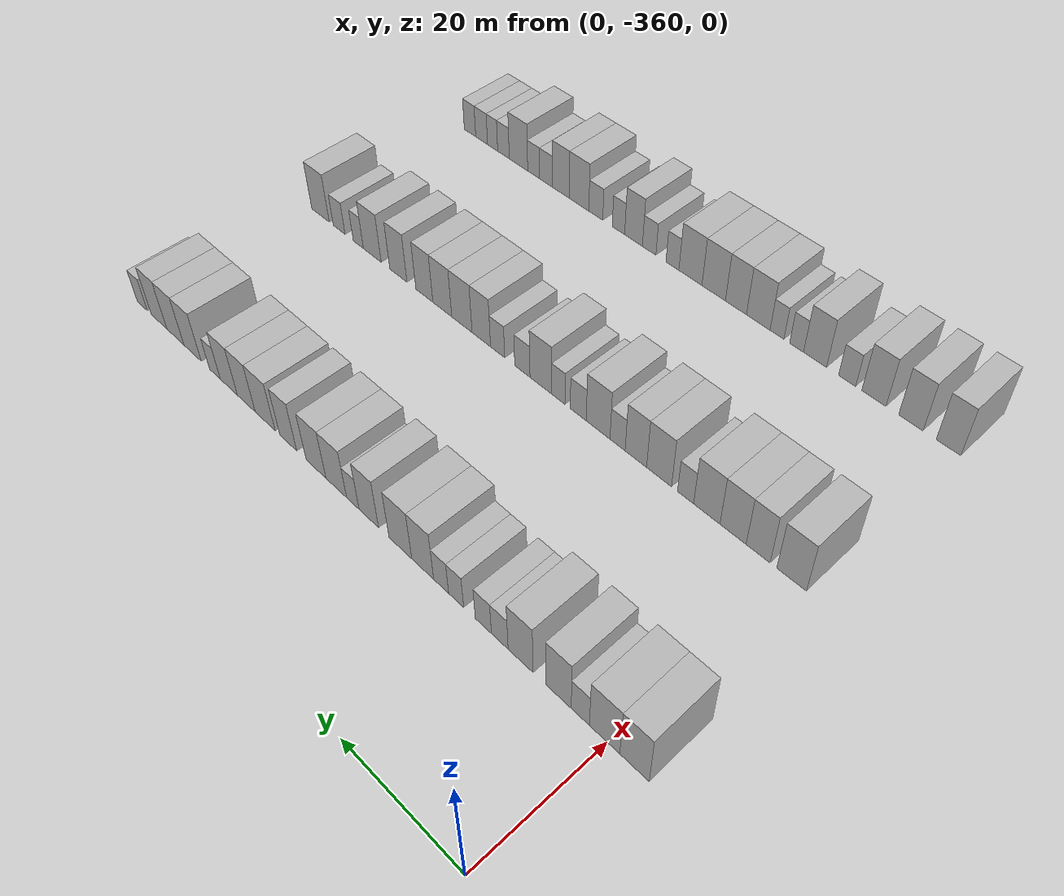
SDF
<sdf version="1.6">
 <world name="default">
  <model name="building_26">
   <static>1</static>
   <pose>25.0000 -363.9053 0 0.000000 0.000000 0.000000</pose>
   <link name="link">
    <pose>0 0 4.50 0 0 0</pose>
    <collision name="collision"><geometry><box><size>10.0000 4.2323 9.0000</size></box></geometry></collision>
    <visual name="visual">
     <cast_shadows>0</cast_shadows>
     <geometry><box><size>10.0000 4.2323 9.0000</size></box></geometry>
     <material>
      <script>
       <uri>model://HANNAS_wall/materials/scripts</uri>
       <uri>model://HANNAS_wall/materials/textures</uri>
       <name>vrc/HANNAS_wall</name>
      </script>
     </material>
    </visual>
   </link>
  </model>
  <model name="building_27">
   <static>1</static>
   <pose>25.0000 -359.5431 0 0.000000 0.000000 0.000000</pose>
   <link name="link">
    <pose>0 0 4.50 0 0 0</pose>
    <collision name="collision"><geometry><box><size>10.0000 4.4922 9.0000</size></box></geometry></collision>
    <visual name="visual">
     <cast_shadows>0</cast_shadows>
     <geometry><box><size>10.0000 4.4922 9.0000</size></box></geometry>
     <material>
      <script>
       <uri>model://HANNAS_wall/materials/scripts</uri>
       <uri>model://HANNAS_wall/materials/textures</uri>
       <name>vrc/HANNAS_wall</name>
      </script>
     </material>
    </visual>
   </link>
  </model>
  <model name="building_28">
   <static>1</static>
   <pose>25.0000 -355.9144 0 0.000000 0.000000 0.000000</pose>
   <link name="link">
    <pose>0 0 3.00 0 0 0</pose>
    <collision name="collision"><geometry><box><size>10.0000 2.7651 6.0000</size></box></geometry></collision>
    <visual name="visual">
     <cast_shadows>0</cast_shadows>
     <geometry><box><size>10.0000 2.7651 6.0000</size></box></geometry>
     <material>
      <script>
       <uri>model://HANNAS_wall/materials/scripts</uri>
       <uri>model://HANNAS_wall/materials/textures</uri>
       <name>vrc/HANNAS_wall</name>
      </script>
     </material>
    </visual>
   </link>
  </model>
  <model name="building_29">
   <static>1</static>
   <pose>25.0000 -352.5536 0 0.000000 0.000000 0.000000</pose>
   <link name="link">
    <pose>0 0 4.50 0 0 0</pose>
    <collision name="collision"><geometry><box><size>10.0000 3.9565 9.0000</size></box></geometry></collision>
    <visual name="visual">
     <cast_shadows>0</cast_shadows>
     <geometry><box><size>10.0000 3.9565 9.0000</size></box></geometry>
     <material>
      <script>
       <uri>model://HANNAS_wall/materials/scripts</uri>
       <uri>model://HANNAS_wall/materials/textures</uri>
       <name>vrc/HANNAS_wall</name>
      </script>
     </material>
    </visual>
   </link>
  </model>
  <model name="building_30">
   <static>1</static>
   <pose>25.0000 -346.5459 0 0.000000 0.000000 0.000000</pose>
   <link name="link">
    <pose>0 0 4.50 0 0 0</pose>
    <collision name="collision"><geometry><box><size>10.0000 4.0587 9.0000</size></box></geometry></collision>
    <visual name="visual">
     <cast_shadows>0</cast_shadows>
     <geometry><box><size>10.0000 4.0587 9.0000</size></box></geometry>
     <material>
      <script>
       <uri>model://HANNAS_wall/materials/scripts</uri>
       <uri>model://HANNAS_wall/materials/textures</uri>
       <name>vrc/HANNAS_wall</name>
      </script>
     </material>
    </visual>
   </link>
  </model>
  <model name="building_31">
   <static>1</static>
   <pose>25.0000 -343.1259 0 0.000000 0.000000 0.000000</pose>
   <link name="link">
    <pose>0 0 3.00 0 0 0</pose>
    <collision name="collision"><geometry><box><size>10.0000 2.7814 6.0000</size></box></geometry></collision>
    <visual name="visual">
     <cast_shadows>0</cast_shadows>
     <geometry><box><size>10.0000 2.7814 6.0000</size></box></geometry>
     <material>
      <script>
       <uri>model://HANNAS_wall/materials/scripts</uri>
       <uri>model://HANNAS_wall/materials/textures</uri>
       <name>vrc/HANNAS_wall</name>
      </script>
     </material>
    </visual>
   </link>
  </model>
  <model name="building_32">
   <static>1</static>
   <pose>25.0000 -340.3711 0 0.000000 0.000000 0.000000</pose>
   <link name="link">
    <pose>0 0 3.00 0 0 0</pose>
    <collision name="collision"><geometry><box><size>10.0000 2.7281 6.0000</size></box></geometry></collision>
    <visual name="visual">
     <cast_shadows>0</cast_shadows>
     <geometry><box><size>10.0000 2.7281 6.0000</size></box></geometry>
     <material>
      <script>
       <uri>model://HANNAS_wall/materials/scripts</uri>
       <uri>model://HANNAS_wall/materials/textures</uri>
       <name>vrc/HANNAS_wall</name>
      </script>
     </material>
    </visual>
   </link>
  </model>
  <model name="building_33">
   <static>1</static>
   <pose>25.0000 -335.6899 0 0.000000 0.000000 0.000000</pose>
   <link name="link">
    <pose>0 0 3.00 0 0 0</pose>
    <collision name="collision"><geometry><box><size>10.0000 2.6342 6.0000</size></box></geometry></collision>
    <visual name="visual">
     <cast_shadows>0</cast_shadows>
     <geometry><box><size>10.0000 2.6342 6.0000</size></box></geometry>
     <material>
      <script>
       <uri>model://HANNAS_wall/materials/scripts</uri>
       <uri>model://HANNAS_wall/materials/textures</uri>
       <name>vrc/HANNAS_wall</name>
      </script>
     </material>
    </visual>
   </link>
  </model>
  <model name="building_34">
   <static>1</static>
   <pose>25.0000 -333.0433 0 0.000000 0.000000 0.000000</pose>
   <link name="link">
    <pose>0 0 3.00 0 0 0</pose>
    <collision name="collision"><geometry><box><size>10.0000 2.6590 6.0000</size></box></geometry></collision>
    <visual name="visual">
     <cast_shadows>0</cast_shadows>
     <geometry><box><size>10.0000 2.6590 6.0000</size></box></geometry>
     <material>
      <script>
       <uri>model://HANNAS_wall/materials/scripts</uri>
       <uri>model://HANNAS_wall/materials/textures</uri>
       <name>vrc/HANNAS_wall</name>
      </script>
     </material>
    </visual>
   </link>
  </model>
  <model name="building_35">
   <static>1</static>
   <pose>25.0000 -329.7199 0 0.000000 0.000000 0.000000</pose>
   <link name="link">
    <pose>0 0 4.50 0 0 0</pose>
    <collision name="collision"><geometry><box><size>10.0000 3.9879 9.0000</size></box></geometry></collision>
    <visual name="visual">
     <cast_shadows>0</cast_shadows>
     <geometry><box><size>10.0000 3.9879 9.0000</size></box></geometry>
     <material>
      <script>
       <uri>model://HANNAS_wall/materials/scripts</uri>
       <uri>model://HANNAS_wall/materials/textures</uri>
       <name>vrc/HANNAS_wall</name>
      </script>
     </material>
    </visual>
   </link>
  </model>
  <model name="building_36">
   <static>1</static>
   <pose>25.0000 -325.5999 0 0.000000 0.000000 0.000000</pose>
   <link name="link">
    <pose>0 0 4.50 0 0 0</pose>
    <collision name="collision"><geometry><box><size>10.0000 4.2521 9.0000</size></box></geometry></collision>
    <visual name="visual">
     <cast_shadows>0</cast_shadows>
     <geometry><box><size>10.0000 4.2521 9.0000</size></box></geometry>
     <material>
      <script>
       <uri>model://HANNAS_wall/materials/scripts</uri>
       <uri>model://HANNAS_wall/materials/textures</uri>
       <name>vrc/HANNAS_wall</name>
      </script>
     </material>
    </visual>
   </link>
  </model>
  <model name="building_37">
   <static>1</static>
   <pose>25.0000 -319.5817 0 0.000000 0.000000 0.000000</pose>
   <link name="link">
    <pose>0 0 4.50 0 0 0</pose>
    <collision name="collision"><geometry><box><size>10.0000 3.7843 9.0000</size></box></geometry></collision>
    <visual name="visual">
     <cast_shadows>0</cast_shadows>
     <geometry><box><size>10.0000 3.7843 9.0000</size></box></geometry>
     <material>
      <script>
       <uri>model://HANNAS_wall/materials/scripts</uri>
       <uri>model://HANNAS_wall/materials/textures</uri>
       <name>vrc/HANNAS_wall</name>
      </script>
     </material>
    </visual>
   </link>
  </model>
  <model name="building_38">
   <static>1</static>
   <pose>25.0000 -316.4495 0 0.000000 0.000000 0.000000</pose>
   <link name="link">
    <pose>0 0 3.00 0 0 0</pose>
    <collision name="collision"><geometry><box><size>10.0000 2.4800 6.0000</size></box></geometry></collision>
    <visual name="visual">
     <cast_shadows>0</cast_shadows>
     <geometry><box><size>10.0000 2.4800 6.0000</size></box></geometry>
     <material>
      <script>
       <uri>model://HANNAS_wall/materials/scripts</uri>
       <uri>model://HANNAS_wall/materials/textures</uri>
       <name>vrc/HANNAS_wall</name>
      </script>
     </material>
    </visual>
   </link>
  </model>
  <model name="building_39">
   <static>1</static>
   <pose>25.0000 -313.1120 0 0.000000 0.000000 0.000000</pose>
   <link name="link">
    <pose>0 0 4.50 0 0 0</pose>
    <collision name="collision"><geometry><box><size>10.0000 4.1951 9.0000</size></box></geometry></collision>
    <visual name="visual">
     <cast_shadows>0</cast_shadows>
     <geometry><box><size>10.0000 4.1951 9.0000</size></box></geometry>
     <material>
      <script>
       <uri>model://HANNAS_wall/materials/scripts</uri>
       <uri>model://HANNAS_wall/materials/textures</uri>
       <name>vrc/HANNAS_wall</name>
      </script>
     </material>
    </visual>
   </link>
  </model>
  <model name="building_40">
   <static>1</static>
   <pose>25.0000 -308.9611 0 0.000000 0.000000 0.000000</pose>
   <link name="link">
    <pose>0 0 4.50 0 0 0</pose>
    <collision name="collision"><geometry><box><size>10.0000 4.1069 9.0000</size></box></geometry></collision>
    <visual name="visual">
     <cast_shadows>0</cast_shadows>
     <geometry><box><size>10.0000 4.1069 9.0000</size></box></geometry>
     <material>
      <script>
       <uri>model://HANNAS_wall/materials/scripts</uri>
       <uri>model://HANNAS_wall/materials/textures</uri>
       <name>vrc/HANNAS_wall</name>
      </script>
     </material>
    </visual>
   </link>
  </model>
  <model name="building_41">
   <static>1</static>
   <pose>25.0000 -303.0796 0 0.000000 0.000000 0.000000</pose>
   <link name="link">
    <pose>0 0 4.50 0 0 0</pose>
    <collision name="collision"><geometry><box><size>10.0000 3.6561 9.0000</size></box></geometry></collision>
    <visual name="visual">
     <cast_shadows>0</cast_shadows>
     <geometry><box><size>10.0000 3.6561 9.0000</size></box></geometry>
     <material>
      <script>
       <uri>model://HANNAS_wall/materials/scripts</uri>
       <uri>model://HANNAS_wall/materials/textures</uri>
       <name>vrc/HANNAS_wall</name>
      </script>
     </material>
    </visual>
   </link>
  </model>
  <model name="building_42">
   <static>1</static>
   <pose>25.0000 -298.0338 0 0.000000 0.000000 0.000000</pose>
   <link name="link">
    <pose>0 0 4.50 0 0 0</pose>
    <collision name="collision"><geometry><box><size>10.0000 4.4354 9.0000</size></box></geometry></collision>
    <visual name="visual">
     <cast_shadows>0</cast_shadows>
     <geometry><box><size>10.0000 4.4354 9.0000</size></box></geometry>
     <material>
      <script>
       <uri>model://HANNAS_wall/materials/scripts</uri>
       <uri>model://HANNAS_wall/materials/textures</uri>
       <name>vrc/HANNAS_wall</name>
      </script>
     </material>
    </visual>
   </link>
  </model>
  <model name="building_43">
   <static>1</static>
   <pose>25.0000 -293.7824 0 0.000000 0.000000 0.000000</pose>
   <link name="link">
    <pose>0 0 4.50 0 0 0</pose>
    <collision name="collision"><geometry><box><size>10.0000 4.0675 9.0000</size></box></geometry></collision>
    <visual name="visual">
     <cast_shadows>0</cast_shadows>
     <geometry><box><size>10.0000 4.0675 9.0000</size></box></geometry>
     <material>
      <script>
       <uri>model://HANNAS_wall/materials/scripts</uri>
       <uri>model://HANNAS_wall/materials/textures</uri>
       <name>vrc/HANNAS_wall</name>
      </script>
     </material>
    </visual>
   </link>
  </model>
  <model name="building_44">
   <static>1</static>
   <pose>25.0000 -289.7570 0 0.000000 0.000000 0.000000</pose>
   <link name="link">
    <pose>0 0 4.50 0 0 0</pose>
    <collision name="collision"><geometry><box><size>10.0000 3.9833 9.0000</size></box></geometry></collision>
    <visual name="visual">
     <cast_shadows>0</cast_shadows>
     <geometry><box><size>10.0000 3.9833 9.0000</size></box></geometry>
     <material>
      <script>
       <uri>model://HANNAS_wall/materials/scripts</uri>
       <uri>model://HANNAS_wall/materials/textures</uri>
       <name>vrc/HANNAS_wall</name>
      </script>
     </material>
    </visual>
   </link>
  </model>
  <model name="building_45">
   <static>1</static>
   <pose>25.0000 -286.4890 0 0.000000 0.000000 0.000000</pose>
   <link name="link">
    <pose>0 0 3.00 0 0 0</pose>
    <collision name="collision"><geometry><box><size>10.0000 2.5528 6.0000</size></box></geometry></collision>
    <visual name="visual">
     <cast_shadows>0</cast_shadows>
     <geometry><box><size>10.0000 2.5528 6.0000</size></box></geometry>
     <material>
      <script>
       <uri>model://HANNAS_wall/materials/scripts</uri>
       <uri>model://HANNAS_wall/materials/textures</uri>
       <name>vrc/HANNAS_wall</name>
      </script>
     </material>
    </visual>
   </link>
  </model>
  <model name="building_46">
   <static>1</static>
   <pose>25.0000 -281.0931 0 0.000000 0.000000 0.000000</pose>
   <link name="link">
    <pose>0 0 4.50 0 0 0</pose>
    <collision name="collision"><geometry><box><size>10.0000 4.2391 9.0000</size></box></geometry></collision>
    <visual name="visual">
     <cast_shadows>0</cast_shadows>
     <geometry><box><size>10.0000 4.2391 9.0000</size></box></geometry>
     <material>
      <script>
       <uri>model://HANNAS_wall/materials/scripts</uri>
       <uri>model://HANNAS_wall/materials/textures</uri>
       <name>vrc/HANNAS_wall</name>
      </script>
     </material>
    </visual>
   </link>
  </model>
  <model name="building_47">
   <static>1</static>
   <pose>25.0000 -276.8349 0 0.000000 0.000000 0.000000</pose>
   <link name="link">
    <pose>0 0 4.50 0 0 0</pose>
    <collision name="collision"><geometry><box><size>10.0000 4.2771 9.0000</size></box></geometry></collision>
    <visual name="visual">
     <cast_shadows>0</cast_shadows>
     <geometry><box><size>10.0000 4.2771 9.0000</size></box></geometry>
     <material>
      <script>
       <uri>model://HANNAS_wall/materials/scripts</uri>
       <uri>model://HANNAS_wall/materials/textures</uri>
       <name>vrc/HANNAS_wall</name>
      </script>
     </material>
    </visual>
   </link>
  </model>
  <model name="building_48">
   <static>1</static>
   <pose>25.0000 -272.6778 0 0.000000 0.000000 0.000000</pose>
   <link name="link">
    <pose>0 0 4.50 0 0 0</pose>
    <collision name="collision"><geometry><box><size>10.0000 4.0372 9.0000</size></box></geometry></collision>
    <visual name="visual">
     <cast_shadows>0</cast_shadows>
     <geometry><box><size>10.0000 4.0372 9.0000</size></box></geometry>
     <material>
      <script>
       <uri>model://HANNAS_wall/materials/scripts</uri>
       <uri>model://HANNAS_wall/materials/textures</uri>
       <name>vrc/HANNAS_wall</name>
      </script>
     </material>
    </visual>
   </link>
  </model>
  <model name="building_49">
   <static>1</static>
   <pose>25.0000 -268.3222 0 0.000000 0.000000 0.000000</pose>
   <link name="link">
    <pose>0 0 3.00 0 0 0</pose>
    <collision name="collision"><geometry><box><size>10.0000 2.6738 6.0000</size></box></geometry></collision>
    <visual name="visual">
     <cast_shadows>0</cast_shadows>
     <geometry><box><size>10.0000 2.6738 6.0000</size></box></geometry>
     <material>
      <script>
       <uri>model://HANNAS_wall/materials/scripts</uri>
       <uri>model://HANNAS_wall/materials/textures</uri>
       <name>vrc/HANNAS_wall</name>
      </script>
     </material>
    </visual>
   </link>
  </model>
  <model name="building_244">
   <static>1</static>
   <pose>55.0000 -360.8457 0 0.000000 0.000000 0.000000</pose>
   <link name="link">
    <pose>0 0 4.50 0 0 0</pose>
    <collision name="collision"><geometry><box><size>10.0000 4.4024 9.0000</size></box></geometry></collision>
    <visual name="visual">
     <cast_shadows>0</cast_shadows>
     <geometry><box><size>10.0000 4.4024 9.0000</size></box></geometry>
     <material>
      <script>
       <uri>model://HANNAS_wall/materials/scripts</uri>
       <uri>model://HANNAS_wall/materials/textures</uri>
       <name>vrc/HANNAS_wall</name>
      </script>
     </material>
    </visual>
   </link>
  </model>
  <model name="building_245">
   <static>1</static>
   <pose>55.0000 -355.8090 0 0.000000 0.000000 0.000000</pose>
   <link name="link">
    <pose>0 0 4.50 0 0 0</pose>
    <collision name="collision"><geometry><box><size>10.0000 3.6710 9.0000</size></box></geometry></collision>
    <visual name="visual">
     <cast_shadows>0</cast_shadows>
     <geometry><box><size>10.0000 3.6710 9.0000</size></box></geometry>
     <material>
      <script>
       <uri>model://HANNAS_wall/materials/scripts</uri>
       <uri>model://HANNAS_wall/materials/textures</uri>
       <name>vrc/HANNAS_wall</name>
      </script>
     </material>
    </visual>
   </link>
  </model>
  <model name="building_246">
   <static>1</static>
   <pose>55.0000 -351.9174 0 0.000000 0.000000 0.000000</pose>
   <link name="link">
    <pose>0 0 4.50 0 0 0</pose>
    <collision name="collision"><geometry><box><size>10.0000 4.1123 9.0000</size></box></geometry></collision>
    <visual name="visual">
     <cast_shadows>0</cast_shadows>
     <geometry><box><size>10.0000 4.1123 9.0000</size></box></geometry>
     <material>
      <script>
       <uri>model://HANNAS_wall/materials/scripts</uri>
       <uri>model://HANNAS_wall/materials/textures</uri>
       <name>vrc/HANNAS_wall</name>
      </script>
     </material>
    </visual>
   </link>
  </model>
  <model name="building_247">
   <static>1</static>
   <pose>55.0000 -347.7353 0 0.000000 0.000000 0.000000</pose>
   <link name="link">
    <pose>0 0 4.50 0 0 0</pose>
    <collision name="collision"><geometry><box><size>10.0000 4.2518 9.0000</size></box></geometry></collision>
    <visual name="visual">
     <cast_shadows>0</cast_shadows>
     <geometry><box><size>10.0000 4.2518 9.0000</size></box></geometry>
     <material>
      <script>
       <uri>model://HANNAS_wall/materials/scripts</uri>
       <uri>model://HANNAS_wall/materials/textures</uri>
       <name>vrc/HANNAS_wall</name>
      </script>
     </material>
    </visual>
   </link>
  </model>
  <model name="building_248">
   <static>1</static>
   <pose>55.0000 -344.2857 0 0.000000 0.000000 0.000000</pose>
   <link name="link">
    <pose>0 0 3.00 0 0 0</pose>
    <collision name="collision"><geometry><box><size>10.0000 2.6474 6.0000</size></box></geometry></collision>
    <visual name="visual">
     <cast_shadows>0</cast_shadows>
     <geometry><box><size>10.0000 2.6474 6.0000</size></box></geometry>
     <material>
      <script>
       <uri>model://HANNAS_wall/materials/scripts</uri>
       <uri>model://HANNAS_wall/materials/textures</uri>
       <name>vrc/HANNAS_wall</name>
      </script>
     </material>
    </visual>
   </link>
  </model>
  <model name="building_249">
   <static>1</static>
   <pose>55.0000 -339.8509 0 0.000000 0.000000 0.000000</pose>
   <link name="link">
    <pose>0 0 4.50 0 0 0</pose>
    <collision name="collision"><geometry><box><size>10.0000 4.2223 9.0000</size></box></geometry></collision>
    <visual name="visual">
     <cast_shadows>0</cast_shadows>
     <geometry><box><size>10.0000 4.2223 9.0000</size></box></geometry>
     <material>
      <script>
       <uri>model://HANNAS_wall/materials/scripts</uri>
       <uri>model://HANNAS_wall/materials/textures</uri>
       <name>vrc/HANNAS_wall</name>
      </script>
     </material>
    </visual>
   </link>
  </model>
  <model name="building_250">
   <static>1</static>
   <pose>55.0000 -335.8705 0 0.000000 0.000000 0.000000</pose>
   <link name="link">
    <pose>0 0 4.50 0 0 0</pose>
    <collision name="collision"><geometry><box><size>10.0000 3.7384 9.0000</size></box></geometry></collision>
    <visual name="visual">
     <cast_shadows>0</cast_shadows>
     <geometry><box><size>10.0000 3.7384 9.0000</size></box></geometry>
     <material>
      <script>
       <uri>model://HANNAS_wall/materials/scripts</uri>
       <uri>model://HANNAS_wall/materials/textures</uri>
       <name>vrc/HANNAS_wall</name>
      </script>
     </material>
    </visual>
   </link>
  </model>
  <model name="building_251">
   <static>1</static>
   <pose>55.0000 -332.6635 0 0.000000 0.000000 0.000000</pose>
   <link name="link">
    <pose>0 0 3.00 0 0 0</pose>
    <collision name="collision"><geometry><box><size>10.0000 2.6757 6.0000</size></box></geometry></collision>
    <visual name="visual">
     <cast_shadows>0</cast_shadows>
     <geometry><box><size>10.0000 2.6757 6.0000</size></box></geometry>
     <material>
      <script>
       <uri>model://HANNAS_wall/materials/scripts</uri>
       <uri>model://HANNAS_wall/materials/textures</uri>
       <name>vrc/HANNAS_wall</name>
      </script>
     </material>
    </visual>
   </link>
  </model>
  <model name="building_252">
   <static>1</static>
   <pose>55.0000 -329.1748 0 0.000000 0.000000 0.000000</pose>
   <link name="link">
    <pose>0 0 4.50 0 0 0</pose>
    <collision name="collision"><geometry><box><size>10.0000 4.3019 9.0000</size></box></geometry></collision>
    <visual name="visual">
     <cast_shadows>0</cast_shadows>
     <geometry><box><size>10.0000 4.3019 9.0000</size></box></geometry>
     <material>
      <script>
       <uri>model://HANNAS_wall/materials/scripts</uri>
       <uri>model://HANNAS_wall/materials/textures</uri>
       <name>vrc/HANNAS_wall</name>
      </script>
     </material>
    </visual>
   </link>
  </model>
  <model name="building_253">
   <static>1</static>
   <pose>55.0000 -325.5563 0 0.000000 0.000000 0.000000</pose>
   <link name="link">
    <pose>0 0 3.00 0 0 0</pose>
    <collision name="collision"><geometry><box><size>10.0000 2.9350 6.0000</size></box></geometry></collision>
    <visual name="visual">
     <cast_shadows>0</cast_shadows>
     <geometry><box><size>10.0000 2.9350 6.0000</size></box></geometry>
     <material>
      <script>
       <uri>model://HANNAS_wall/materials/scripts</uri>
       <uri>model://HANNAS_wall/materials/textures</uri>
       <name>vrc/HANNAS_wall</name>
      </script>
     </material>
    </visual>
   </link>
  </model>
  <model name="building_254">
   <static>1</static>
   <pose>55.0000 -321.8369 0 0.000000 0.000000 0.000000</pose>
   <link name="link">
    <pose>0 0 3.00 0 0 0</pose>
    <collision name="collision"><geometry><box><size>10.0000 2.5040 6.0000</size></box></geometry></collision>
    <visual name="visual">
     <cast_shadows>0</cast_shadows>
     <geometry><box><size>10.0000 2.5040 6.0000</size></box></geometry>
     <material>
      <script>
       <uri>model://HANNAS_wall/materials/scripts</uri>
       <uri>model://HANNAS_wall/materials/textures</uri>
       <name>vrc/HANNAS_wall</name>
      </script>
     </material>
    </visual>
   </link>
  </model>
  <model name="building_255">
   <static>1</static>
   <pose>55.0000 -318.4939 0 0.000000 0.000000 0.000000</pose>
   <link name="link">
    <pose>0 0 4.50 0 0 0</pose>
    <collision name="collision"><geometry><box><size>10.0000 4.1819 9.0000</size></box></geometry></collision>
    <visual name="visual">
     <cast_shadows>0</cast_shadows>
     <geometry><box><size>10.0000 4.1819 9.0000</size></box></geometry>
     <material>
      <script>
       <uri>model://HANNAS_wall/materials/scripts</uri>
       <uri>model://HANNAS_wall/materials/textures</uri>
       <name>vrc/HANNAS_wall</name>
      </script>
     </material>
    </visual>
   </link>
  </model>
  <model name="building_256">
   <static>1</static>
   <pose>55.0000 -314.9033 0 0.000000 0.000000 0.000000</pose>
   <link name="link">
    <pose>0 0 3.00 0 0 0</pose>
    <collision name="collision"><geometry><box><size>10.0000 2.9994 6.0000</size></box></geometry></collision>
    <visual name="visual">
     <cast_shadows>0</cast_shadows>
     <geometry><box><size>10.0000 2.9994 6.0000</size></box></geometry>
     <material>
      <script>
       <uri>model://HANNAS_wall/materials/scripts</uri>
       <uri>model://HANNAS_wall/materials/textures</uri>
       <name>vrc/HANNAS_wall</name>
      </script>
     </material>
    </visual>
   </link>
  </model>
  <model name="building_257">
   <static>1</static>
   <pose>55.0000 -309.9721 0 0.000000 0.000000 0.000000</pose>
   <link name="link">
    <pose>0 0 3.00 0 0 0</pose>
    <collision name="collision"><geometry><box><size>10.0000 2.8630 6.0000</size></box></geometry></collision>
    <visual name="visual">
     <cast_shadows>0</cast_shadows>
     <geometry><box><size>10.0000 2.8630 6.0000</size></box></geometry>
     <material>
      <script>
       <uri>model://HANNAS_wall/materials/scripts</uri>
       <uri>model://HANNAS_wall/materials/textures</uri>
       <name>vrc/HANNAS_wall</name>
      </script>
     </material>
    </visual>
   </link>
  </model>
  <model name="building_258">
   <static>1</static>
   <pose>55.0000 -306.6339 0 0.000000 0.000000 0.000000</pose>
   <link name="link">
    <pose>0 0 4.50 0 0 0</pose>
    <collision name="collision"><geometry><box><size>10.0000 3.8132 9.0000</size></box></geometry></collision>
    <visual name="visual">
     <cast_shadows>0</cast_shadows>
     <geometry><box><size>10.0000 3.8132 9.0000</size></box></geometry>
     <material>
      <script>
       <uri>model://HANNAS_wall/materials/scripts</uri>
       <uri>model://HANNAS_wall/materials/textures</uri>
       <name>vrc/HANNAS_wall</name>
      </script>
     </material>
    </visual>
   </link>
  </model>
  <model name="building_259">
   <static>1</static>
   <pose>55.0000 -302.5806 0 0.000000 0.000000 0.000000</pose>
   <link name="link">
    <pose>0 0 4.50 0 0 0</pose>
    <collision name="collision"><geometry><box><size>10.0000 4.2936 9.0000</size></box></geometry></collision>
    <visual name="visual">
     <cast_shadows>0</cast_shadows>
     <geometry><box><size>10.0000 4.2936 9.0000</size></box></geometry>
     <material>
      <script>
       <uri>model://HANNAS_wall/materials/scripts</uri>
       <uri>model://HANNAS_wall/materials/textures</uri>
       <name>vrc/HANNAS_wall</name>
      </script>
     </material>
    </visual>
   </link>
  </model>
  <model name="building_260">
   <static>1</static>
   <pose>55.0000 -298.3923 0 0.000000 0.000000 0.000000</pose>
   <link name="link">
    <pose>0 0 4.50 0 0 0</pose>
    <collision name="collision"><geometry><box><size>10.0000 4.0829 9.0000</size></box></geometry></collision>
    <visual name="visual">
     <cast_shadows>0</cast_shadows>
     <geometry><box><size>10.0000 4.0829 9.0000</size></box></geometry>
     <material>
      <script>
       <uri>model://HANNAS_wall/materials/scripts</uri>
       <uri>model://HANNAS_wall/materials/textures</uri>
       <name>vrc/HANNAS_wall</name>
      </script>
     </material>
    </visual>
   </link>
  </model>
  <model name="building_261">
   <static>1</static>
   <pose>55.0000 -294.4822 0 0.000000 0.000000 0.000000</pose>
   <link name="link">
    <pose>0 0 4.50 0 0 0</pose>
    <collision name="collision"><geometry><box><size>10.0000 3.7372 9.0000</size></box></geometry></collision>
    <visual name="visual">
     <cast_shadows>0</cast_shadows>
     <geometry><box><size>10.0000 3.7372 9.0000</size></box></geometry>
     <material>
      <script>
       <uri>model://HANNAS_wall/materials/scripts</uri>
       <uri>model://HANNAS_wall/materials/textures</uri>
       <name>vrc/HANNAS_wall</name>
      </script>
     </material>
    </visual>
   </link>
  </model>
  <model name="building_262">
   <static>1</static>
   <pose>55.0000 -288.6668 0 0.000000 0.000000 0.000000</pose>
   <link name="link">
    <pose>0 0 4.50 0 0 0</pose>
    <collision name="collision"><geometry><box><size>10.0000 3.8936 9.0000</size></box></geometry></collision>
    <visual name="visual">
     <cast_shadows>0</cast_shadows>
     <geometry><box><size>10.0000 3.8936 9.0000</size></box></geometry>
     <material>
      <script>
       <uri>model://HANNAS_wall/materials/scripts</uri>
       <uri>model://HANNAS_wall/materials/textures</uri>
       <name>vrc/HANNAS_wall</name>
      </script>
     </material>
    </visual>
   </link>
  </model>
  <model name="building_263">
   <static>1</static>
   <pose>55.0000 -282.6279 0 0.000000 0.000000 0.000000</pose>
   <link name="link">
    <pose>0 0 4.50 0 0 0</pose>
    <collision name="collision"><geometry><box><size>10.0000 4.1843 9.0000</size></box></geometry></collision>
    <visual name="visual">
     <cast_shadows>0</cast_shadows>
     <geometry><box><size>10.0000 4.1843 9.0000</size></box></geometry>
     <material>
      <script>
       <uri>model://HANNAS_wall/materials/scripts</uri>
       <uri>model://HANNAS_wall/materials/textures</uri>
       <name>vrc/HANNAS_wall</name>
      </script>
     </material>
    </visual>
   </link>
  </model>
  <model name="building_264">
   <static>1</static>
   <pose>55.0000 -279.3342 0 0.000000 0.000000 0.000000</pose>
   <link name="link">
    <pose>0 0 3.00 0 0 0</pose>
    <collision name="collision"><geometry><box><size>10.0000 2.4031 6.0000</size></box></geometry></collision>
    <visual name="visual">
     <cast_shadows>0</cast_shadows>
     <geometry><box><size>10.0000 2.4031 6.0000</size></box></geometry>
     <material>
      <script>
       <uri>model://HANNAS_wall/materials/scripts</uri>
       <uri>model://HANNAS_wall/materials/textures</uri>
       <name>vrc/HANNAS_wall</name>
      </script>
     </material>
    </visual>
   </link>
  </model>
  <model name="building_265">
   <static>1</static>
   <pose>55.0000 -274.6930 0 0.000000 0.000000 0.000000</pose>
   <link name="link">
    <pose>0 0 3.00 0 0 0</pose>
    <collision name="collision"><geometry><box><size>10.0000 2.8792 6.0000</size></box></geometry></collision>
    <visual name="visual">
     <cast_shadows>0</cast_shadows>
     <geometry><box><size>10.0000 2.8792 6.0000</size></box></geometry>
     <material>
      <script>
       <uri>model://HANNAS_wall/materials/scripts</uri>
       <uri>model://HANNAS_wall/materials/textures</uri>
       <name>vrc/HANNAS_wall</name>
      </script>
     </material>
    </visual>
   </link>
  </model>
  <model name="building_266">
   <static>1</static>
   <pose>55.0000 -270.0660 0 0.000000 0.000000 0.000000</pose>
   <link name="link">
    <pose>0 0 4.50 0 0 0</pose>
    <collision name="collision"><geometry><box><size>10.0000 4.3748 9.0000</size></box></geometry></collision>
    <visual name="visual">
     <cast_shadows>0</cast_shadows>
     <geometry><box><size>10.0000 4.3748 9.0000</size></box></geometry>
     <material>
      <script>
       <uri>model://HANNAS_wall/materials/scripts</uri>
       <uri>model://HANNAS_wall/materials/textures</uri>
       <name>vrc/HANNAS_wall</name>
      </script>
     </material>
    </visual>
   </link>
  </model>
  <model name="building_472">
   <static>1</static>
   <pose>85.0000 -362.3800 0 0.000000 0.000000 0.000000</pose>
   <link name="link">
    <pose>0 0 4.50 0 0 0</pose>
    <collision name="collision"><geometry><box><size>10.0000 3.7009 9.0000</size></box></geometry></collision>
    <visual name="visual">
     <cast_shadows>0</cast_shadows>
     <geometry><box><size>10.0000 3.7009 9.0000</size></box></geometry>
     <material>
      <script>
       <uri>model://HANNAS_wall/materials/scripts</uri>
       <uri>model://HANNAS_wall/materials/textures</uri>
       <name>vrc/HANNAS_wall</name>
      </script>
     </material>
    </visual>
   </link>
  </model>
  <model name="building_473">
   <static>1</static>
   <pose>85.0000 -356.6254 0 0.000000 0.000000 0.000000</pose>
   <link name="link">
    <pose>0 0 4.50 0 0 0</pose>
    <collision name="collision"><geometry><box><size>10.0000 3.8082 9.0000</size></box></geometry></collision>
    <visual name="visual">
     <cast_shadows>0</cast_shadows>
     <geometry><box><size>10.0000 3.8082 9.0000</size></box></geometry>
     <material>
      <script>
       <uri>model://HANNAS_wall/materials/scripts</uri>
       <uri>model://HANNAS_wall/materials/textures</uri>
       <name>vrc/HANNAS_wall</name>
      </script>
     </material>
    </visual>
   </link>
  </model>
  <model name="building_474">
   <static>1</static>
   <pose>85.0000 -350.7753 0 0.000000 0.000000 0.000000</pose>
   <link name="link">
    <pose>0 0 4.50 0 0 0</pose>
    <collision name="collision"><geometry><box><size>10.0000 3.8921 9.0000</size></box></geometry></collision>
    <visual name="visual">
     <cast_shadows>0</cast_shadows>
     <geometry><box><size>10.0000 3.8921 9.0000</size></box></geometry>
     <material>
      <script>
       <uri>model://HANNAS_wall/materials/scripts</uri>
       <uri>model://HANNAS_wall/materials/textures</uri>
       <name>vrc/HANNAS_wall</name>
      </script>
     </material>
    </visual>
   </link>
  </model>
  <model name="building_475">
   <static>1</static>
   <pose>85.0000 -346.4176 0 0.000000 0.000000 0.000000</pose>
   <link name="link">
    <pose>0 0 3.00 0 0 0</pose>
    <collision name="collision"><geometry><box><size>10.0000 2.8232 6.0000</size></box></geometry></collision>
    <visual name="visual">
     <cast_shadows>0</cast_shadows>
     <geometry><box><size>10.0000 2.8232 6.0000</size></box></geometry>
     <material>
      <script>
       <uri>model://HANNAS_wall/materials/scripts</uri>
       <uri>model://HANNAS_wall/materials/textures</uri>
       <name>vrc/HANNAS_wall</name>
      </script>
     </material>
    </visual>
   </link>
  </model>
  <model name="building_476">
   <static>1</static>
   <pose>85.0000 -341.0400 0 0.000000 0.000000 0.000000</pose>
   <link name="link">
    <pose>0 0 4.50 0 0 0</pose>
    <collision name="collision"><geometry><box><size>10.0000 3.9320 9.0000</size></box></geometry></collision>
    <visual name="visual">
     <cast_shadows>0</cast_shadows>
     <geometry><box><size>10.0000 3.9320 9.0000</size></box></geometry>
     <material>
      <script>
       <uri>model://HANNAS_wall/materials/scripts</uri>
       <uri>model://HANNAS_wall/materials/textures</uri>
       <name>vrc/HANNAS_wall</name>
      </script>
     </material>
    </visual>
   </link>
  </model>
  <model name="building_477">
   <static>1</static>
   <pose>85.0000 -337.8716 0 0.000000 0.000000 0.000000</pose>
   <link name="link">
    <pose>0 0 3.00 0 0 0</pose>
    <collision name="collision"><geometry><box><size>10.0000 2.4048 6.0000</size></box></geometry></collision>
    <visual name="visual">
     <cast_shadows>0</cast_shadows>
     <geometry><box><size>10.0000 2.4048 6.0000</size></box></geometry>
     <material>
      <script>
       <uri>model://HANNAS_wall/materials/scripts</uri>
       <uri>model://HANNAS_wall/materials/textures</uri>
       <name>vrc/HANNAS_wall</name>
      </script>
     </material>
    </visual>
   </link>
  </model>
  <model name="building_478">
   <static>1</static>
   <pose>85.0000 -334.4467 0 0.000000 0.000000 0.000000</pose>
   <link name="link">
    <pose>0 0 3.00 0 0 0</pose>
    <collision name="collision"><geometry><box><size>10.0000 2.4451 6.0000</size></box></geometry></collision>
    <visual name="visual">
     <cast_shadows>0</cast_shadows>
     <geometry><box><size>10.0000 2.4451 6.0000</size></box></geometry>
     <material>
      <script>
       <uri>model://HANNAS_wall/materials/scripts</uri>
       <uri>model://HANNAS_wall/materials/textures</uri>
       <name>vrc/HANNAS_wall</name>
      </script>
     </material>
    </visual>
   </link>
  </model>
  <model name="building_479">
   <static>1</static>
   <pose>85.0000 -331.0992 0 0.000000 0.000000 0.000000</pose>
   <link name="link">
    <pose>0 0 4.50 0 0 0</pose>
    <collision name="collision"><geometry><box><size>10.0000 4.2500 9.0000</size></box></geometry></collision>
    <visual name="visual">
     <cast_shadows>0</cast_shadows>
     <geometry><box><size>10.0000 4.2500 9.0000</size></box></geometry>
     <material>
      <script>
       <uri>model://HANNAS_wall/materials/scripts</uri>
       <uri>model://HANNAS_wall/materials/textures</uri>
       <name>vrc/HANNAS_wall</name>
      </script>
     </material>
    </visual>
   </link>
  </model>
  <model name="building_480">
   <static>1</static>
   <pose>85.0000 -327.0387 0 0.000000 0.000000 0.000000</pose>
   <link name="link">
    <pose>0 0 4.50 0 0 0</pose>
    <collision name="collision"><geometry><box><size>10.0000 3.8709 9.0000</size></box></geometry></collision>
    <visual name="visual">
     <cast_shadows>0</cast_shadows>
     <geometry><box><size>10.0000 3.8709 9.0000</size></box></geometry>
     <material>
      <script>
       <uri>model://HANNAS_wall/materials/scripts</uri>
       <uri>model://HANNAS_wall/materials/textures</uri>
       <name>vrc/HANNAS_wall</name>
      </script>
     </material>
    </visual>
   </link>
  </model>
  <model name="building_481">
   <static>1</static>
   <pose>85.0000 -322.8939 0 0.000000 0.000000 0.000000</pose>
   <link name="link">
    <pose>0 0 4.50 0 0 0</pose>
    <collision name="collision"><geometry><box><size>10.0000 4.4187 9.0000</size></box></geometry></collision>
    <visual name="visual">
     <cast_shadows>0</cast_shadows>
     <geometry><box><size>10.0000 4.4187 9.0000</size></box></geometry>
     <material>
      <script>
       <uri>model://HANNAS_wall/materials/scripts</uri>
       <uri>model://HANNAS_wall/materials/textures</uri>
       <name>vrc/HANNAS_wall</name>
      </script>
     </material>
    </visual>
   </link>
  </model>
  <model name="building_482">
   <static>1</static>
   <pose>85.0000 -318.4547 0 0.000000 0.000000 0.000000</pose>
   <link name="link">
    <pose>0 0 4.50 0 0 0</pose>
    <collision name="collision"><geometry><box><size>10.0000 4.4597 9.0000</size></box></geometry></collision>
    <visual name="visual">
     <cast_shadows>0</cast_shadows>
     <geometry><box><size>10.0000 4.4597 9.0000</size></box></geometry>
     <material>
      <script>
       <uri>model://HANNAS_wall/materials/scripts</uri>
       <uri>model://HANNAS_wall/materials/textures</uri>
       <name>vrc/HANNAS_wall</name>
      </script>
     </material>
    </visual>
   </link>
  </model>
  <model name="building_483">
   <static>1</static>
   <pose>85.0000 -314.9619 0 0.000000 0.000000 0.000000</pose>
   <link name="link">
    <pose>0 0 3.00 0 0 0</pose>
    <collision name="collision"><geometry><box><size>10.0000 2.5259 6.0000</size></box></geometry></collision>
    <visual name="visual">
     <cast_shadows>0</cast_shadows>
     <geometry><box><size>10.0000 2.5259 6.0000</size></box></geometry>
     <material>
      <script>
       <uri>model://HANNAS_wall/materials/scripts</uri>
       <uri>model://HANNAS_wall/materials/textures</uri>
       <name>vrc/HANNAS_wall</name>
      </script>
     </material>
    </visual>
   </link>
  </model>
  <model name="building_484">
   <static>1</static>
   <pose>85.0000 -310.3404 0 0.000000 0.000000 0.000000</pose>
   <link name="link">
    <pose>0 0 3.00 0 0 0</pose>
    <collision name="collision"><geometry><box><size>10.0000 2.7171 6.0000</size></box></geometry></collision>
    <visual name="visual">
     <cast_shadows>0</cast_shadows>
     <geometry><box><size>10.0000 2.7171 6.0000</size></box></geometry>
     <material>
      <script>
       <uri>model://HANNAS_wall/materials/scripts</uri>
       <uri>model://HANNAS_wall/materials/textures</uri>
       <name>vrc/HANNAS_wall</name>
      </script>
     </material>
    </visual>
   </link>
  </model>
  <model name="building_485">
   <static>1</static>
   <pose>85.0000 -307.1582 0 0.000000 0.000000 0.000000</pose>
   <link name="link">
    <pose>0 0 4.50 0 0 0</pose>
    <collision name="collision"><geometry><box><size>10.0000 3.6474 9.0000</size></box></geometry></collision>
    <visual name="visual">
     <cast_shadows>0</cast_shadows>
     <geometry><box><size>10.0000 3.6474 9.0000</size></box></geometry>
     <material>
      <script>
       <uri>model://HANNAS_wall/materials/scripts</uri>
       <uri>model://HANNAS_wall/materials/textures</uri>
       <name>vrc/HANNAS_wall</name>
      </script>
     </material>
    </visual>
   </link>
  </model>
  <model name="building_486">
   <static>1</static>
   <pose>85.0000 -304.0485 0 0.000000 0.000000 0.000000</pose>
   <link name="link">
    <pose>0 0 3.00 0 0 0</pose>
    <collision name="collision"><geometry><box><size>10.0000 2.5721 6.0000</size></box></geometry></collision>
    <visual name="visual">
     <cast_shadows>0</cast_shadows>
     <geometry><box><size>10.0000 2.5721 6.0000</size></box></geometry>
     <material>
      <script>
       <uri>model://HANNAS_wall/materials/scripts</uri>
       <uri>model://HANNAS_wall/materials/textures</uri>
       <name>vrc/HANNAS_wall</name>
      </script>
     </material>
    </visual>
   </link>
  </model>
  <model name="building_487">
   <static>1</static>
   <pose>85.0000 -299.2695 0 0.000000 0.000000 0.000000</pose>
   <link name="link">
    <pose>0 0 3.00 0 0 0</pose>
    <collision name="collision"><geometry><box><size>10.0000 2.9859 6.0000</size></box></geometry></collision>
    <visual name="visual">
     <cast_shadows>0</cast_shadows>
     <geometry><box><size>10.0000 2.9859 6.0000</size></box></geometry>
     <material>
      <script>
       <uri>model://HANNAS_wall/materials/scripts</uri>
       <uri>model://HANNAS_wall/materials/textures</uri>
       <name>vrc/HANNAS_wall</name>
      </script>
     </material>
    </visual>
   </link>
  </model>
  <model name="building_488">
   <static>1</static>
   <pose>85.0000 -295.6433 0 0.000000 0.000000 0.000000</pose>
   <link name="link">
    <pose>0 0 4.50 0 0 0</pose>
    <collision name="collision"><geometry><box><size>10.0000 4.2666 9.0000</size></box></geometry></collision>
    <visual name="visual">
     <cast_shadows>0</cast_shadows>
     <geometry><box><size>10.0000 4.2666 9.0000</size></box></geometry>
     <material>
      <script>
       <uri>model://HANNAS_wall/materials/scripts</uri>
       <uri>model://HANNAS_wall/materials/textures</uri>
       <name>vrc/HANNAS_wall</name>
      </script>
     </material>
    </visual>
   </link>
  </model>
  <model name="building_489">
   <static>1</static>
   <pose>85.0000 -291.6849 0 0.000000 0.000000 0.000000</pose>
   <link name="link">
    <pose>0 0 4.50 0 0 0</pose>
    <collision name="collision"><geometry><box><size>10.0000 3.6501 9.0000</size></box></geometry></collision>
    <visual name="visual">
     <cast_shadows>0</cast_shadows>
     <geometry><box><size>10.0000 3.6501 9.0000</size></box></geometry>
     <material>
      <script>
       <uri>model://HANNAS_wall/materials/scripts</uri>
       <uri>model://HANNAS_wall/materials/textures</uri>
       <name>vrc/HANNAS_wall</name>
      </script>
     </material>
    </visual>
   </link>
  </model>
  <model name="building_490">
   <static>1</static>
   <pose>85.0000 -288.4052 0 0.000000 0.000000 0.000000</pose>
   <link name="link">
    <pose>0 0 3.00 0 0 0</pose>
    <collision name="collision"><geometry><box><size>10.0000 2.9094 6.0000</size></box></geometry></collision>
    <visual name="visual">
     <cast_shadows>0</cast_shadows>
     <geometry><box><size>10.0000 2.9094 6.0000</size></box></geometry>
     <material>
      <script>
       <uri>model://HANNAS_wall/materials/scripts</uri>
       <uri>model://HANNAS_wall/materials/textures</uri>
       <name>vrc/HANNAS_wall</name>
      </script>
     </material>
    </visual>
   </link>
  </model>
  <model name="building_491">
   <static>1</static>
   <pose>85.0000 -285.5754 0 0.000000 0.000000 0.000000</pose>
   <link name="link">
    <pose>0 0 3.00 0 0 0</pose>
    <collision name="collision"><geometry><box><size>10.0000 2.7503 6.0000</size></box></geometry></collision>
    <visual name="visual">
     <cast_shadows>0</cast_shadows>
     <geometry><box><size>10.0000 2.7503 6.0000</size></box></geometry>
     <material>
      <script>
       <uri>model://HANNAS_wall/materials/scripts</uri>
       <uri>model://HANNAS_wall/materials/textures</uri>
       <name>vrc/HANNAS_wall</name>
      </script>
     </material>
    </visual>
   </link>
  </model>
  <model name="building_492">
   <static>1</static>
   <pose>85.0000 -282.0641 0 0.000000 0.000000 0.000000</pose>
   <link name="link">
    <pose>0 0 4.50 0 0 0</pose>
    <collision name="collision"><geometry><box><size>10.0000 4.2722 9.0000</size></box></geometry></collision>
    <visual name="visual">
     <cast_shadows>0</cast_shadows>
     <geometry><box><size>10.0000 4.2722 9.0000</size></box></geometry>
     <material>
      <script>
       <uri>model://HANNAS_wall/materials/scripts</uri>
       <uri>model://HANNAS_wall/materials/textures</uri>
       <name>vrc/HANNAS_wall</name>
      </script>
     </material>
    </visual>
   </link>
  </model>
  <model name="building_493">
   <static>1</static>
   <pose>85.0000 -278.5575 0 0.000000 0.000000 0.000000</pose>
   <link name="link">
    <pose>0 0 3.00 0 0 0</pose>
    <collision name="collision"><geometry><box><size>10.0000 2.7410 6.0000</size></box></geometry></collision>
    <visual name="visual">
     <cast_shadows>0</cast_shadows>
     <geometry><box><size>10.0000 2.7410 6.0000</size></box></geometry>
     <material>
      <script>
       <uri>model://HANNAS_wall/materials/scripts</uri>
       <uri>model://HANNAS_wall/materials/textures</uri>
       <name>vrc/HANNAS_wall</name>
      </script>
     </material>
    </visual>
   </link>
  </model>
  <model name="building_494">
   <static>1</static>
   <pose>85.0000 -275.9742 0 0.000000 0.000000 0.000000</pose>
   <link name="link">
    <pose>0 0 3.00 0 0 0</pose>
    <collision name="collision"><geometry><box><size>10.0000 2.4257 6.0000</size></box></geometry></collision>
    <visual name="visual">
     <cast_shadows>0</cast_shadows>
     <geometry><box><size>10.0000 2.4257 6.0000</size></box></geometry>
     <material>
      <script>
       <uri>model://HANNAS_wall/materials/scripts</uri>
       <uri>model://HANNAS_wall/materials/textures</uri>
       <name>vrc/HANNAS_wall</name>
      </script>
     </material>
    </visual>
   </link>
  </model>
  <model name="building_495">
   <static>1</static>
   <pose>85.0000 -273.3263 0 0.000000 0.000000 0.000000</pose>
   <link name="link">
    <pose>0 0 3.00 0 0 0</pose>
    <collision name="collision"><geometry><box><size>10.0000 2.8701 6.0000</size></box></geometry></collision>
    <visual name="visual">
     <cast_shadows>0</cast_shadows>
     <geometry><box><size>10.0000 2.8701 6.0000</size></box></geometry>
     <material>
      <script>
       <uri>model://HANNAS_wall/materials/scripts</uri>
       <uri>model://HANNAS_wall/materials/textures</uri>
       <name>vrc/HANNAS_wall</name>
      </script>
     </material>
    </visual>
   </link>
  </model>
  <model name="building_496">
   <static>1</static>
   <pose>85.0000 -270.4978 0 0.000000 0.000000 0.000000</pose>
   <link name="link">
    <pose>0 0 3.00 0 0 0</pose>
    <collision name="collision"><geometry><box><size>10.0000 2.7869 6.0000</size></box></geometry></collision>
    <visual name="visual">
     <cast_shadows>0</cast_shadows>
     <geometry><box><size>10.0000 2.7869 6.0000</size></box></geometry>
     <material>
      <script>
       <uri>model://HANNAS_wall/materials/scripts</uri>
       <uri>model://HANNAS_wall/materials/textures</uri>
       <name>vrc/HANNAS_wall</name>
      </script>
     </material>
    </visual>
   </link>
  </model>
 </world>
</sdf>
